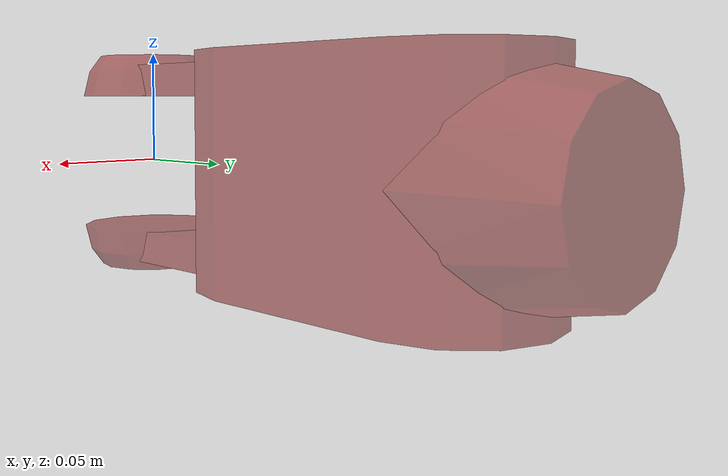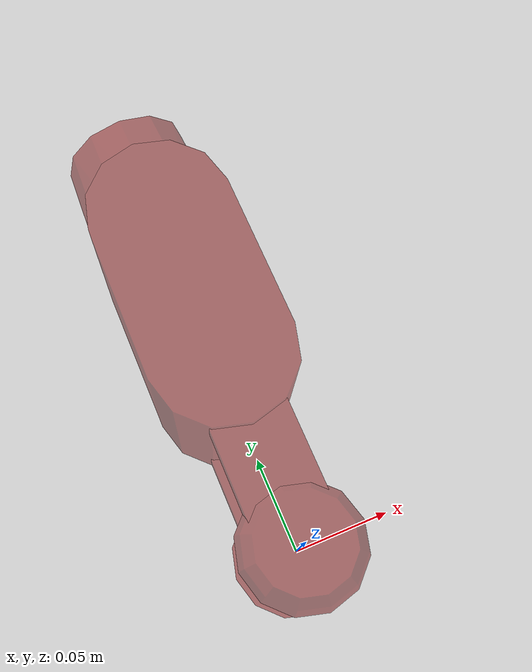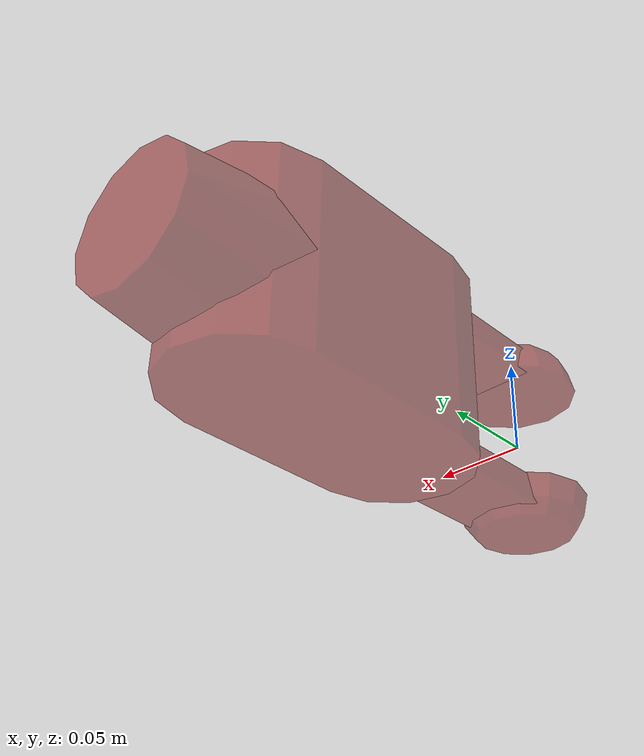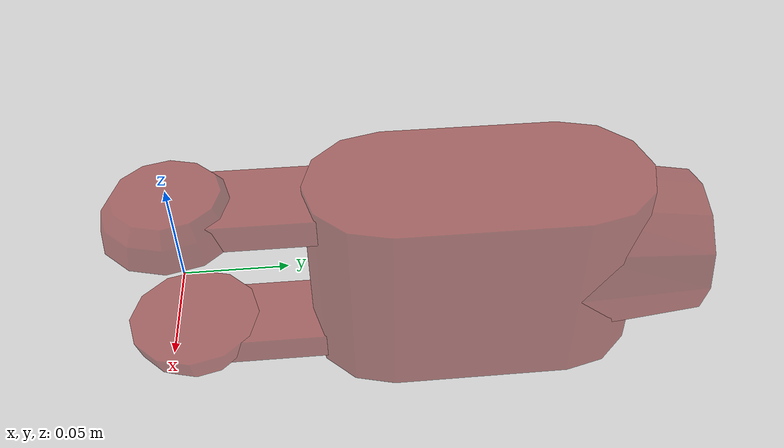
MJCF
<?xml version="1.0" encoding="UTF-8"?>
<mujoco model="manual_collision">
  <compiler angle="radian"/>
  <default>
    <default class="collision">
      <geom type="mesh" group="0" rgba="0.5 0 0 0.5"/>
    </default>
  </default>
  <asset>
    <mesh name="_sn_python1_manual_collision_3" file="meshes/sn_python1_manual_collision_3.stl"/>
    <mesh name="_sn_python1_manual_collision_5" file="meshes/sn_python1_manual_collision_5.stl"/>
    <mesh name="_sn_python1_manual_collision_6" file="meshes/sn_python1_manual_collision_6.stl"/>
    <mesh name="_sn_python1_manual_collision_9" file="meshes/sn_python1_manual_collision_9.stl"/>
    <mesh name="_sn_python1_prim_7_box" file="meshes/sn_python1_prim_7_box.stl"/>
    <mesh name="_sn_python1_prim_8_box" file="meshes/sn_python1_prim_8_box.stl"/>
  </asset>
  <worldbody>
    <body name="python1" pos="0 0 0" quat="1 0 0 0">
      <inertial pos="0 0 0" mass="1" diaginertia="1e-4 1e-4 1e-4"/>
      <geom class="collision" type="mesh" mesh="_sn_python1_manual_collision_3" pos="0 0 0" quat="1 0 0 0"/>
      <geom class="collision" type="mesh" mesh="_sn_python1_manual_collision_5" pos="0 0 0" quat="1 0 0 0"/>
      <geom class="collision" type="mesh" mesh="_sn_python1_manual_collision_6" pos="0 0 0" quat="1 0 0 0"/>
      <geom class="collision" type="mesh" mesh="_sn_python1_manual_collision_9" pos="0 0 0" quat="1 0 0 0"/>
      <geom class="collision" type="mesh" mesh="_sn_python1_prim_7_box" pos="0 0 0" quat="1 0 0 0"/>
      <geom class="collision" type="mesh" mesh="_sn_python1_prim_8_box" pos="0 0 0" quat="1 0 0 0"/>
    </body>
  </worldbody>
</mujoco>
